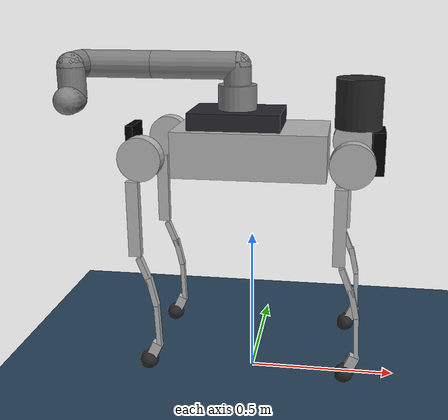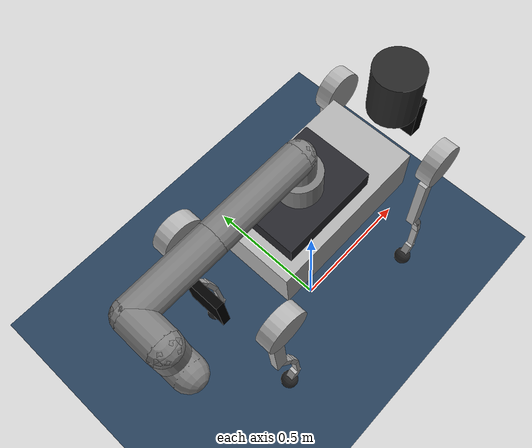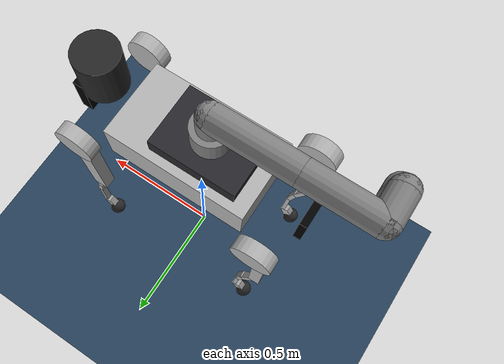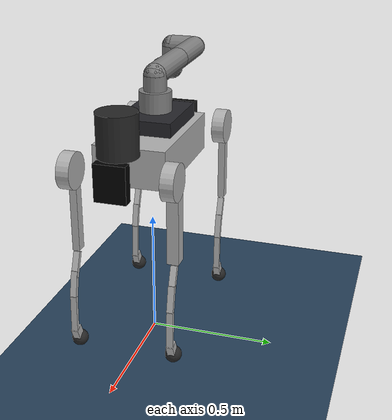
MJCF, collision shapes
<mujoco model="b2 arm flat scene">
  <!-- 보행 측정용. 장애물이 없는 평지에서 정책의 속도 추종만 잰다. -->
  <include file="b2_arm.xml"/>
  <include file="flat_world.xml"/>

  <keyframe>
    <!-- Nominal stand: the pose B2's FixStand FSM holds before handing off to the
         RL policy, so the policy's first action is a no-op. -->
    <key name="stand"
      qpos="0 0 0.5435 1 0 0 0
            0 0.8 -1.5  0 0.8 -1.5  0 0.8 -1.5  0 0.8 -1.5"/>
  </keyframe>
</mujoco>

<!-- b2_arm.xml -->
<mujoco model="b2_arm">
  <compiler angle="radian" meshdir="assets" autolimits="true" />
  <default>
    <default class="b2">
      <geom type="mesh" />
      <joint damping="1" armature="0.1" />
      <default class="visual">
        <geom contype="0" conaffinity="0" group="2" />
      </default>
      <default class="collision">
        <geom group="3" mass="0" density="0" />
      </default>
      <site size="0.001" rgba="0.5 0.5 0.5 0.3" group="4" />
    </default>
  </default>
  <asset>
    <mesh name="base_link" file="base_link.obj" />
    <mesh name="logo_left" file="logo_left.obj" />
    <mesh name="logo_right" file="logo_right.obj" />
    <mesh name="unitree_ladar" file="unitree_ladar.obj" />
    <mesh name="f_dc_link" file="f_dc_link.obj" />
    <mesh name="r_dc_link" file="r_dc_link.obj" />
    <mesh name="fake_imu_link" file="fake_imu_link.STL" />
    <mesh name="fake_head_Link" file="fake_head_Link.STL" />
    <mesh name="fake_tail_link" file="fake_tail_link.STL" />
    <mesh name="FL_hip" file="FL_hip.obj" />
    <mesh name="FL_thigh" file="FL_thigh.obj" />
    <mesh name="FL_thigh_protect" file="FL_thigh_protect.obj" />
    <mesh name="FL_calf" file="FL_calf.obj" />
    <mesh name="FL_foot" file="FL_foot.obj" />
    <mesh name="FR_hip" file="FR_hip.obj" />
    <mesh name="FR_thigh" file="FR_thigh.obj" />
    <mesh name="FR_thigh_protect" file="FR_thigh_protect.obj" />
    <mesh name="FR_calf" file="FR_calf.obj" />
    <mesh name="FR_foot" file="FR_foot.obj" />
    <mesh name="RL_hip" file="RL_hip.obj" />
    <mesh name="RL_thigh" file="RL_thigh.obj" />
    <mesh name="RL_thigh_protect" file="RL_thigh_protect.obj" />
    <mesh name="RL_calf" file="RL_calf.obj" />
    <mesh name="RL_foot" file="RL_foot.obj" />
    <mesh name="RR_hip" file="RR_hip.obj" />
    <mesh name="RR_thigh" file="RR_thigh.obj" />
    <mesh name="RR_thigh_protect" file="RR_thigh_protect.obj" />
    <mesh name="RR_calf" file="RR_calf.obj" />
    <mesh name="RR_foot" file="RR_foot.obj" />
    <mesh name="f_oc_link" file="f_oc_link.obj" />
    <mesh name="r_oc_link" file="r_oc_link.obj" />
    <mesh name="fr3_base_link" file="fr3_base_link.STL" />
    <mesh name="fr3_shoulder_link" file="fr3_shoulder_link.STL" />
    <mesh name="fr3_upperarm_link" file="fr3_upperarm_link.STL" />
    <mesh name="fr3_forearm_link" file="fr3_forearm_link.STL" />
    <mesh name="fr3_wrist1_link" file="fr3_wrist1_link.STL" />
    <mesh name="fr3_wrist2_link" file="fr3_wrist2_link.STL" />
    <mesh name="fr3_wrist3_link" file="fr3_wrist3_link.STL" />
  </asset>
  <worldbody>
    <body name="base_link" pos="0 0 0.8" childclass="b2">
      <inertial pos="0.0212868 0.0045819 0.0106169" quat="0.00178111 0.675412 -0.000262894 0.737438" mass="40.8426" diaginertia="1.73786 1.66448 0.343734" />
      <joint name="floating_base_joint" type="free" />
      <geom type="mesh" contype="0" conaffinity="0" group="1" density="0" rgba="0.7 0.7 0.7 1" mesh="base_link" />
      <geom size="0.25 0.14 0.075" type="box" rgba="0.7 0.7 0.7 1" class="collision" />
      <geom type="mesh" contype="0" conaffinity="0" group="1" density="0" rgba="1 1 1 1" mesh="logo_left" />
      <geom type="mesh" contype="0" conaffinity="0" group="1" density="0" rgba="1 1 1 1" mesh="logo_right" />
      <geom pos="0.34218 0 0.17851" type="mesh" contype="0" conaffinity="0" group="1" density="0" rgba="0.15 0.15 0.15 1" mesh="unitree_ladar" />
      <geom size="0.076 0.08" pos="0.34218 0 0.15851" type="cylinder" rgba="0.15 0.15 0.15 1" class="collision" />
      <geom pos="0.841724 -4.57659e-06 0.130379" quat="0.00244632 3.13845e-06 0.999997 1.29099e-06" type="mesh" contype="0" conaffinity="0" group="1" density="0" rgba="0 0 0 1" mesh="f_dc_link" />
      <geom pos="-0.378319 0.000200109 -0.379902" quat="-1.30076e-06 -0.708662 5.35065e-07 0.705548" type="mesh" contype="0" conaffinity="0" group="1" density="0" rgba="0 0 0 1" mesh="r_dc_link" />
      <geom pos="0 -0.02341 0.04927" type="mesh" contype="0" conaffinity="0" group="1" density="0" rgba="0 0 0 1" mesh="fake_imu_link" />
      <geom type="mesh" contype="0" conaffinity="0" group="1" density="0" rgba="0 0 0 1" mesh="fake_head_Link" />
      <geom size="0.02 0.06 0.07" pos="0.41 0 0.005" type="box" rgba="0 0 0 1" class="collision" />
      <geom type="mesh" contype="0" conaffinity="0" group="1" density="0" rgba="0 0 0 1" mesh="fake_tail_link" />
      <geom size="0.0125 0.06 0.07" pos="-0.405 0 0.005" type="box" rgba="0 0 0 1" class="collision" />
      <geom pos="0.84158 -0.0134347 -0.0134347" quat="-3.89602e-06 1.29867e-06 0.707107 -0.707107" type="mesh" contype="0" conaffinity="0" group="1" density="0" rgba="0 0 0 1" mesh="f_oc_link" />
      <geom pos="-0.00451008 0.0252504 -0.0262476" quat="0.707107 -0.707107 -1.29867e-06 -1.29867e-06" type="mesh" contype="0" conaffinity="0" group="1" density="0" rgba="0 0 0 1" mesh="r_oc_link" />
      <site name="imu" pos="0 -0.02341 0.04927" />
      <body name="FL_hip" pos="0.3285 0.072 0">
        <inertial pos="-0.00829923 -0.00998502 0.000235465" quat="0.525168 0.518964 0.477213 0.476595" mass="2.5294" diaginertia="0.00485541 0.00370618 0.00277182" />
        <joint name="FL_hip_joint" pos="0 0 0" axis="1 0 0" range="-0.87 0.87" />
        <geom type="mesh" contype="0" conaffinity="0" group="1" density="0" rgba="0.7 0.7 0.7 1" mesh="FL_hip" />
        <geom size="0.07 0.025" pos="0 0.12 0" quat="0.707107 0.707107 0 0" type="cylinder" rgba="0.7 0.7 0.7 1" class="collision" />
        <body name="FL_thigh" pos="0 0.11973 0">
          <inertial pos="-0.00418663 -0.0366068 -0.0432737" quat="0.884916 0.0880602 -0.00896728 0.457262" mass="7.4554" diaginertia="0.085057 0.0842843 0.0112538" />
          <joint name="FL_thigh_joint" pos="0 0 0" axis="0 1 0" range="-0.94 4.69" />
          <geom type="mesh" contype="0" conaffinity="0" group="1" density="0" rgba="0.7 0.7 0.7 1" mesh="FL_thigh" />
          <geom size="0.16 0.02225 0.027" pos="-0.025 0 -0.16" quat="0.707388 0 0.706825 0" type="box" rgba="0.7 0.7 0.7 1" class="collision" />
          <geom type="mesh" contype="0" conaffinity="0" group="1" density="0" rgba="0.65 0.68 0.65 1" mesh="FL_thigh_protect" />
          <body name="FL_calf" pos="0 -8.6984e-05 -0.35">
            <inertial pos="0.0096848 1.25758e-05 -0.158987" quat="0.70753 -0.00625821 -0.00634277 0.706627" mass="0.679123" diaginertia="0.0162494 0.0161173 0.000398115" />
            <joint name="FL_calf_joint" pos="0 0 0" axis="0 1 0" range="-2.82 -0.43" />
            <geom type="mesh" contype="0" conaffinity="0" group="1" density="0" rgba="0.7 0.7 0.7 1" mesh="FL_calf" />
            <geom size="0.05 0.01225 0.009" pos="-0.002 0 -0.03" quat="0.825336 0 0.564642 0" type="box" rgba="0.7 0.7 0.7 1" class="collision" />
            <geom size="0.05 0.01225 0.009" pos="0.022 0 -0.1" quat="0.780707 0 0.624897 0" type="box" rgba="0.7 0.7 0.7 1" class="collision" />
            <geom size="0.075 0.01225 0.0075" pos="0.036 0 -0.225" quat="0.721382 0 0.692537 0" type="box" rgba="0.7 0.7 0.7 1" class="collision" />
            <geom size="0.025 0.014 0.0175" pos="0.023 0 -0.31" quat="0.540302 0 0.841471 0" type="box" rgba="0.7 0.7 0.7 1" class="collision" />
            <geom pos="0 8.6986e-05 0" type="mesh" contype="0" conaffinity="0" group="1" density="0" rgba="0.15 0.15 0.15 1" mesh="FL_foot" friction="0.4 0.005 0.0001" />
            <geom size="0.032" pos="0 8.6986e-05 -0.35" quat="0.707388 0.706825 0 0" type="sphere" rgba="0.15 0.15 0.15 1" class="collision" friction="0.4 0.005 0.0001" />
          </body>
        </body>
      </body>
      <body name="FR_hip" pos="0.3285 -0.072 0">
        <inertial pos="-0.00829923 0.00998502 0.000235465" quat="0.476595 0.477213 0.518964 0.525168" mass="2.5294" diaginertia="0.00485541 0.00370618 0.00277182" />
        <joint name="FR_hip_joint" pos="0 0 0" axis="1 0 0" range="-0.87 0.87" />
        <geom type="mesh" contype="0" conaffinity="0" group="1" density="0" rgba="0.7 0.7 0.7 1" mesh="FR_hip" />
        <geom size="0.07 0.025" pos="0 -0.12 0" quat="0.707107 0.707107 0 0" type="cylinder" rgba="0.7 0.7 0.7 1" class="collision" />
        <body name="FR_thigh" pos="0 -0.11973 0">
          <inertial pos="-0.00418663 0.0366068 -0.0432737" quat="0.457262 -0.00896728 0.0880602 0.884916" mass="7.4554" diaginertia="0.085057 0.0842843 0.0112538" />
          <joint name="FR_thigh_joint" pos="0 0 0" axis="0 1 0" range="-0.94 4.69" />
          <geom type="mesh" contype="0" conaffinity="0" group="1" density="0" rgba="0.7 0.7 0.7 1" mesh="FR_thigh" />
          <geom size="0.125 0.014 0.02" pos="-0.03 0 -0.2" quat="0.707388 0 0.706825 0" type="box" rgba="0.7 0.7 0.7 1" class="collision" />
          <geom type="mesh" contype="0" conaffinity="0" group="1" density="0" rgba="0.65 0.68 0.65 1" mesh="FR_thigh_protect" />
          <body name="FR_calf" pos="0 8.6986e-05 -0.35">
            <inertial pos="0.0096848 0 -0.158987" quat="0.707079 -0.00630052 -0.00630052 0.707079" mass="0.679123" diaginertia="0.0162494 0.0161173 0.000398115" />
            <joint name="FR_calf_joint" pos="0 0 0" axis="0 1 0" range="-2.82 -0.43" />
            <geom type="mesh" contype="0" conaffinity="0" group="1" density="0" rgba="0.7 0.7 0.7 1" mesh="FR_calf" />
            <geom size="0.05 0.01225 0.009" pos="-0.002 0 -0.03" quat="0.825336 0 0.564642 0" type="box" rgba="0.7 0.7 0.7 1" class="collision" />
            <geom size="0.05 0.01225 0.009" pos="0.022 0 -0.1" quat="0.780707 0 0.624897 0" type="box" rgba="0.7 0.7 0.7 1" class="collision" />
            <geom size="0.075 0.01225 0.0075" pos="0.036 0 -0.225" quat="0.721382 0 0.692537 0" type="box" rgba="0.7 0.7 0.7 1" class="collision" />
            <geom size="0.025 0.014 0.0175" pos="0.023 0 -0.31" quat="0.540302 0 0.841471 0" type="box" rgba="0.7 0.7 0.7 1" class="collision" />
            <geom type="mesh" contype="0" conaffinity="0" group="1" density="0" rgba="0.15 0.15 0.15 1" mesh="FR_foot" friction="0.4 0.005 0.0001" />
            <geom size="0.032" pos="0 8.6986e-05 -0.35" quat="0.707388 0.706825 0 0" type="sphere" rgba="0.15 0.15 0.15 1" class="collision" friction="0.4 0.005 0.0001" />
          </body>
        </body>
      </body>
      <body name="RL_hip" pos="-0.3285 0.072 0">
        <inertial pos="0.00829923 -0.00998502 0.000235465" quat="0.477213 0.476595 0.525168 0.518964" mass="2.5294" diaginertia="0.00485541 0.00370618 0.00277182" />
        <joint name="RL_hip_joint" pos="0 0 0" axis="1 0 0" range="-0.87 0.87" />
        <geom type="mesh" contype="0" conaffinity="0" group="1" density="0" rgba="0.7 0.7 0.7 1" mesh="RL_hip" />
        <geom size="0.07 0.025" pos="0 0.12 0" quat="0.707107 0.707107 0 0" type="cylinder" rgba="0.7 0.7 0.7 1" class="collision" />
        <body name="RL_thigh" pos="0 0.11973 0">
          <inertial pos="-0.00418663 -0.0366068 -0.0432737" quat="0.884916 0.0880602 -0.00896728 0.457262" mass="7.4554" diaginertia="0.085057 0.0842843 0.0112538" />
          <joint name="RL_thigh_joint" pos="0 0 0" axis="0 1 0" range="-0.94 4.69" />
          <geom type="mesh" contype="0" conaffinity="0" group="1" density="0" rgba="0.7 0.7 0.7 1" mesh="RL_thigh" />
          <geom size="0.125 0.014 0.02" pos="-0.03 0 -0.2" quat="0.707388 0 0.706825 0" type="box" rgba="0.7 0.7 0.7 1" class="collision" />
          <geom type="mesh" contype="0" conaffinity="0" group="1" density="0" rgba="0.65 0.68 0.65 1" mesh="RL_thigh_protect" />
          <body name="RL_calf" pos="0 -8.6984e-05 -0.35">
            <inertial pos="0.0096848 1.25758e-05 -0.158987" quat="0.70753 -0.00625821 -0.00634277 0.706627" mass="0.679123" diaginertia="0.0162494 0.0161173 0.000398115" />
            <joint name="RL_calf_joint" pos="0 0 0" axis="0 1 0" range="-2.82 -0.43" />
            <geom type="mesh" contype="0" conaffinity="0" group="1" density="0" rgba="0.7 0.7 0.7 1" mesh="RL_calf" />
            <geom size="0.05 0.01225 0.009" pos="-0.002 0 -0.03" quat="0.825336 0 0.564642 0" type="box" rgba="0.7 0.7 0.7 1" class="collision" />
            <geom size="0.05 0.01225 0.009" pos="0.022 0 -0.1" quat="0.780707 0 0.624897 0" type="box" rgba="0.7 0.7 0.7 1" class="collision" />
            <geom size="0.075 0.01225 0.0075" pos="0.036 0 -0.225" quat="0.721382 0 0.692537 0" type="box" rgba="0.7 0.7 0.7 1" class="collision" />
            <geom size="0.025 0.014 0.0175" pos="0.023 0 -0.31" quat="0.540302 0 0.841471 0" type="box" rgba="0.7 0.7 0.7 1" class="collision" />
            <geom pos="0 8.6986e-05 0" type="mesh" contype="0" conaffinity="0" group="1" density="0" rgba="0.15 0.15 0.15 1" mesh="RL_foot" friction="0.4 0.005 0.0001" />
            <geom size="0.032" pos="0 8.6986e-05 -0.35" quat="0.707388 0.706825 0 0" type="sphere" rgba="0.15 0.15 0.15 1" class="collision" friction="0.4 0.005 0.0001" />
          </body>
        </body>
      </body>
      <body name="RR_hip" pos="-0.3285 -0.072 0">
        <inertial pos="0.00829923 -0.00825992 0.000235465" quat="0.524846 0.53164 0.469132 0.470967" mass="2.5294" diaginertia="0.0048658 0.00378576 0.00284106" />
        <joint name="RR_hip_joint" pos="0 0 0" axis="1 0 0" range="-0.87 0.87" />
        <geom type="mesh" contype="0" conaffinity="0" group="1" density="0" rgba="0.7 0.7 0.7 1" mesh="RR_hip" />
        <geom size="0.07 0.025" pos="0 -0.12 0" quat="0.707107 0.707107 0 0" type="cylinder" rgba="0.7 0.7 0.7 1" class="collision" />
        <body name="RR_thigh" pos="0 -0.11973 0">
          <inertial pos="-0.00418663 0.0366068 -0.0432737" quat="0.457262 -0.00896728 0.0880602 0.884916" mass="7.4554" diaginertia="0.085057 0.0842843 0.0112538" />
          <joint name="RR_thigh_joint" pos="0 0 0" axis="0 1 0" range="-0.94 4.69" />
          <geom type="mesh" contype="0" conaffinity="0" group="1" density="0" rgba="0.7 0.7 0.7 1" mesh="RR_thigh" />
          <geom size="0.125 0.014 0.02" pos="-0.03 0 -0.2" quat="0.707388 0 0.706825 0" type="box" rgba="0.7 0.7 0.7 1" class="collision" />
          <geom type="mesh" contype="0" conaffinity="0" group="1" density="0" rgba="0.65 0.68 0.65 1" mesh="RR_thigh_protect" />
          <body name="RR_calf" pos="0 8.6986e-05 -0.35">
            <inertial pos="0.0096848 -1.25756e-05 -0.158987" quat="0.706627 -0.00634277 -0.00625821 0.70753" mass="0.679123" diaginertia="0.0162494 0.0161173 0.000398115" />
            <joint name="RR_calf_joint" pos="0 0 0" axis="0 1 0" range="-2.82 -0.43" />
            <geom type="mesh" contype="0" conaffinity="0" group="1" density="0" rgba="0.7 0.7 0.7 1" mesh="RR_calf" />
            <geom size="0.05 0.01225 0.009" pos="-0.002 0 -0.03" quat="0.825336 0 0.564642 0" type="box" rgba="0.7 0.7 0.7 1" class="collision" />
            <geom size="0.05 0.01225 0.009" pos="0.022 0 -0.1" quat="0.780707 0 0.624897 0" type="box" rgba="0.7 0.7 0.7 1" class="collision" />
            <geom size="0.075 0.01225 0.0075" pos="0.036 0 -0.225" quat="0.721382 0 0.692537 0" type="box" rgba="0.7 0.7 0.7 1" class="collision" />
            <geom size="0.025 0.014 0.0175" pos="0.023 0 -0.31" quat="0.540302 0 0.841471 0" type="box" rgba="0.7 0.7 0.7 1" class="collision" />
            <geom pos="0 -8.6984e-05 0" type="mesh" contype="0" conaffinity="0" group="1" density="0" rgba="0.15 0.15 0.15 1" mesh="RR_foot" friction="0.4 0.005 0.0001" />
            <geom size="0.032" pos="0 8.6986e-05 -0.35" quat="0.707388 0.706825 0 0" type="sphere" rgba="0.15 0.15 0.15 1" class="collision" friction="0.4 0.005 0.0001" />
          </body>
        </body>
      </body>
      <body name="payload_deck" pos="-0.05 0 0.1">
        <inertial pos="0 0 0" mass="6.5" diaginertia="0.0281667 0.0507 0.0749667" />
        <geom type="box" size="0.15 0.11 0.03" class="visual" rgba="0.15 0.15 0.17 1" />
        <geom type="box" size="0.15 0.11 0.03" class="collision" name="payload_deck_collision" />
      </body>
      <body name="fr3_base_link" pos="-0.05 0 0.13">
        <inertial pos="0 0 0.033" mass="0.784" diaginertia="0.00139 0.00138 0.00198" />
        <geom type="mesh" mesh="fr3_base_link" group="1" contype="0" conaffinity="0" density="0" rgba="0.85 0.85 0.88 1" />
        <geom name="fr3_base_collision" type="cylinder" size="0.064 0.04" pos="0 0 0.04" class="collision" />
        <body name="fr3_shoulder_link" pos="0 0 0">
          <inertial pos="-5e-05 -0.01592 0.00226" mass="2.24" diaginertia="0.00304 0.00224 0.00296" />
          <joint name="fr3_shoulder" type="hinge" axis="0 0 1" range="-3.0543 3.0543" damping="2" armature="0.05" />
          <geom type="mesh" mesh="fr3_shoulder_link" group="1" contype="0" conaffinity="0" density="0" rgba="0.18 0.44 0.84 1" />
          <geom name="fr3_shoulder_collision" type="capsule" fromto="0 0 0 0 0 0.14" size="0.045" class="collision" />
          <body name="fr3_upperarm_link" pos="0 0 0.14" euler="1.5708 0 0">
            <inertial pos="0.13939 0 0.09954" mass="4.94" diaginertia="0.00681 0.09321 0.09151" />
            <joint name="fr3_upperarm" type="hinge" axis="0 0 1" range="-4.6251 1.4835" damping="2" armature="0.05" />
            <geom type="mesh" mesh="fr3_upperarm_link" group="1" contype="0" conaffinity="0" density="0" rgba="0.18 0.44 0.84 1" />
            <geom name="fr3_upperarm_collision" type="capsule" fromto="0 0 0 -0.28 0 0" size="0.045" class="collision" />
            <body name="fr3_forearm_link" pos="-0.28 0 0">
              <inertial pos="0.05899 8e-05 0.01299" mass="2.29" diaginertia="0.00264 0.02075 0.02039" />
              <joint name="fr3_forearm" type="hinge" axis="0 0 1" range="-2.8274 2.8274" damping="2" armature="0.05" />
              <geom type="mesh" mesh="fr3_forearm_link" group="1" contype="0" conaffinity="0" density="0" rgba="0.18 0.44 0.84 1" />
              <geom name="fr3_forearm_collision" type="capsule" fromto="0 0 0 -0.24001 0 0" size="0.045" class="collision" />
              <body name="fr3_wrist1_link" pos="-0.24001 0 0">
                <inertial pos="5e-05 -0.00233 0.01467" mass="1.56" diaginertia="0.00163 0.00158 0.00126" />
                <joint name="fr3_wrist1" type="hinge" axis="0 0 1" range="-4.6251 1.4835" damping="2" armature="0.05" />
                <geom type="mesh" mesh="fr3_wrist1_link" group="1" contype="0" conaffinity="0" density="0" rgba="0.18 0.44 0.84 1" />
                <geom name="fr3_wrist1_collision" type="capsule" fromto="0 0 0 0 0 0.102" size="0.045" class="collision" />
                <body name="fr3_wrist2_link" pos="0 0 0.102" euler="1.5708 0 0">
                  <inertial pos="-5e-05 0.00233 0.01467" mass="1.56" diaginertia="0.00163 0.00158 0.00126" />
                  <joint name="fr3_wrist2" type="hinge" axis="0 0 1" range="-3.0543 3.0543" damping="2" armature="0.05" />
                  <geom type="mesh" mesh="fr3_wrist2_link" group="1" contype="0" conaffinity="0" density="0" rgba="0.18 0.44 0.84 1" />
                  <geom name="fr3_wrist2_collision" type="capsule" fromto="0 0 0 0 0 0.102" size="0.045" class="collision" />
                  <body name="fr3_wrist3_link" pos="0 0 0.102" euler="-1.5708 0 0">
                    <inertial pos="-0.00055 -0.00111 -0.02005" mass="0.36" diaginertia="0.00023 0.00023 0.00036" />
                    <joint name="fr3_wrist3" type="hinge" axis="0 0 1" range="-3.0543 3.0543" damping="2" armature="0.05" />
                    <geom type="mesh" mesh="fr3_wrist3_link" group="1" contype="0" conaffinity="0" density="0" rgba="0.18 0.44 0.84 1" />
                    <geom name="fr3_wrist3_collision" type="capsule" fromto="0 0 0 0 0 0.05" size="0.045" class="collision" />
                  </body>
                </body>
              </body>
            </body>
          </body>
        </body>
      </body>
    </body>
  </worldbody>
  <actuator>
    <motor class="b2" ctrlrange="-200 200" name="FR_hip" joint="FR_hip_joint" />
    <motor class="b2" ctrlrange="-200 200" name="FR_thigh" joint="FR_thigh_joint" />
    <motor class="b2" ctrlrange="-300 300" name="FR_calf" joint="FR_calf_joint" />
    <motor class="b2" ctrlrange="-200 200" name="FL_hip" joint="FL_hip_joint" />
    <motor class="b2" ctrlrange="-200 200" name="FL_thigh" joint="FL_thigh_joint" />
    <motor class="b2" ctrlrange="-300 300" name="FL_calf" joint="FL_calf_joint" />
    <motor class="b2" ctrlrange="-200 200" name="RR_hip" joint="RR_hip_joint" />
    <motor class="b2" ctrlrange="-200 200" name="RR_thigh" joint="RR_thigh_joint" />
    <motor class="b2" ctrlrange="-300 300" name="RR_calf" joint="RR_calf_joint" />
    <motor class="b2" ctrlrange="-200 200" name="RL_hip" joint="RL_hip_joint" />
    <motor class="b2" ctrlrange="-200 200" name="RL_thigh" joint="RL_thigh_joint" />
    <motor class="b2" ctrlrange="-300 300" name="RL_calf" joint="RL_calf_joint" />
    <position name="fr3_shoulder" joint="fr3_shoulder" kp="900" kv="60" forcerange="-150 150" />
    <position name="fr3_upperarm" joint="fr3_upperarm" kp="900" kv="60" forcerange="-150 150" />
    <position name="fr3_forearm" joint="fr3_forearm" kp="900" kv="60" forcerange="-150 150" />
    <position name="fr3_wrist1" joint="fr3_wrist1" kp="900" kv="60" forcerange="-150 150" />
    <position name="fr3_wrist2" joint="fr3_wrist2" kp="900" kv="60" forcerange="-150 150" />
    <position name="fr3_wrist3" joint="fr3_wrist3" kp="900" kv="60" forcerange="-150 150" />
  </actuator>
  <sensor>
    <jointpos name="FR_hip_pos" joint="FR_hip_joint" />
    <jointpos name="FR_thigh_pos" joint="FR_thigh_joint" />
    <jointpos name="FR_calf_pos" joint="FR_calf_joint" />
    <jointpos name="FL_hip_pos" joint="FL_hip_joint" />
    <jointpos name="FL_thigh_pos" joint="FL_thigh_joint" />
    <jointpos name="FL_calf_pos" joint="FL_calf_joint" />
    <jointpos name="RR_hip_pos" joint="RR_hip_joint" />
    <jointpos name="RR_thigh_pos" joint="RR_thigh_joint" />
    <jointpos name="RR_calf_pos" joint="RR_calf_joint" />
    <jointpos name="RL_hip_pos" joint="RL_hip_joint" />
    <jointpos name="RL_thigh_pos" joint="RL_thigh_joint" />
    <jointpos name="RL_calf_pos" joint="RL_calf_joint" />
    <jointvel name="FR_hip_vel" joint="FR_hip_joint" />
    <jointvel name="FR_thigh_vel" joint="FR_thigh_joint" />
    <jointvel name="FR_calf_vel" joint="FR_calf_joint" />
    <jointvel name="FL_hip_vel" joint="FL_hip_joint" />
    <jointvel name="FL_thigh_vel" joint="FL_thigh_joint" />
    <jointvel name="FL_calf_vel" joint="FL_calf_joint" />
    <jointvel name="RR_hip_vel" joint="RR_hip_joint" />
    <jointvel name="RR_thigh_vel" joint="RR_thigh_joint" />
    <jointvel name="RR_calf_vel" joint="RR_calf_joint" />
    <jointvel name="RL_hip_vel" joint="RL_hip_joint" />
    <jointvel name="RL_thigh_vel" joint="RL_thigh_joint" />
    <jointvel name="RL_calf_vel" joint="RL_calf_joint" />
    <jointactuatorfrc name="FR_hip_torque" joint="FR_hip_joint" noise="0.01" />
    <jointactuatorfrc name="FR_thigh_torque" joint="FR_thigh_joint" noise="0.01" />
    <jointactuatorfrc name="FR_calf_torque" joint="FR_calf_joint" noise="0.01" />
    <jointactuatorfrc name="FL_hip_torque" joint="FL_hip_joint" noise="0.01" />
    <jointactuatorfrc name="FL_thigh_torque" joint="FL_thigh_joint" noise="0.01" />
    <jointactuatorfrc name="FL_calf_torque" joint="FL_calf_joint" noise="0.01" />
    <jointactuatorfrc name="RR_hip_torque" joint="RR_hip_joint" noise="0.01" />
    <jointactuatorfrc name="RR_thigh_torque" joint="RR_thigh_joint" noise="0.01" />
    <jointactuatorfrc name="RR_calf_torque" joint="RR_calf_joint" noise="0.01" />
    <jointactuatorfrc name="RL_hip_torque" joint="RL_hip_joint" noise="0.01" />
    <jointactuatorfrc name="RL_thigh_torque" joint="RL_thigh_joint" noise="0.01" />
    <jointactuatorfrc name="RL_calf_torque" joint="RL_calf_joint" noise="0.01" />
    <framequat name="imu_quat" objtype="site" objname="imu" />
    <gyro name="imu_gyro" site="imu" />
    <accelerometer name="imu_acc" site="imu" />
    <framepos name="frame_pos" objtype="site" objname="imu" />
    <framelinvel name="frame_vel" objtype="site" objname="imu" />
  </sensor>
  <keyframe>
    <key name="home" qpos="0 0 0.5 1 0 0 0 0 1.28 -2.84 0 1.28 -2.84 0 1.28 -2.84 0 1.28 -2.84" ctrl="0 1.28 -2.84 0 1.28 -2.84 0 1.28 -2.84 0 1.28 -2.84" />
  </keyframe>
</mujoco>

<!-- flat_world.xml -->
<mujoco model="flat world">
  <!-- 보행 성능을 재기 위한 빈 평지.
       nav_world.xml 은 벽과 기둥이 있는 24 x 18 m 홀이라 SLAM 에는 맞지만
       속도 추종을 재기에는 맞지 않는다 — 0.6 m/s 로 몇 초만 걸어도 벽에
       닿고, 넘어진 로봇의 표류를 정책의 실력으로 잘못 읽게 된다. 실제로
       그렇게 한 번 잘못 쟀다. -->

  <option timestep="0.005" iterations="20" ls_iterations="20" integrator="implicitfast"/>

  <statistic center="0 0 0.3" extent="6"/>

  <visual>
    <headlight diffuse="0.6 0.6 0.6" ambient="0.35 0.35 0.35" specular="0 0 0"/>
    <rgba haze="0.15 0.25 0.35 1"/>
    <global azimuth="-130" elevation="-20"/>
  </visual>

  <asset>
    <texture type="skybox" builtin="gradient" rgb1="0.3 0.5 0.7" rgb2="0 0 0" width="512" height="3072"/>
    <texture type="2d" name="groundplane" builtin="checker" mark="edge" rgb1="0.2 0.3 0.4"
      rgb2="0.1 0.2 0.3" markrgb="0.8 0.8 0.8" width="300" height="300"/>
    <material name="groundplane" texture="groundplane" texuniform="true" texrepeat="5 5" reflectance="0.2"/>
  </asset>

  <default>
    <default class="world">
      <geom group="0" condim="3" friction="0.9 0.005 0.0001" mass="0" density="0"/>
    </default>
  </default>

  <worldbody>
    <light pos="0 0 6" dir="0 0 -1" directional="true"/>
    <light pos="8 8 6" dir="-1 -1 -1" directional="true"/>
    <geom name="floor" size="0 0 0.05" type="plane" material="groundplane" class="world"/>
  </worldbody>
</mujoco>
